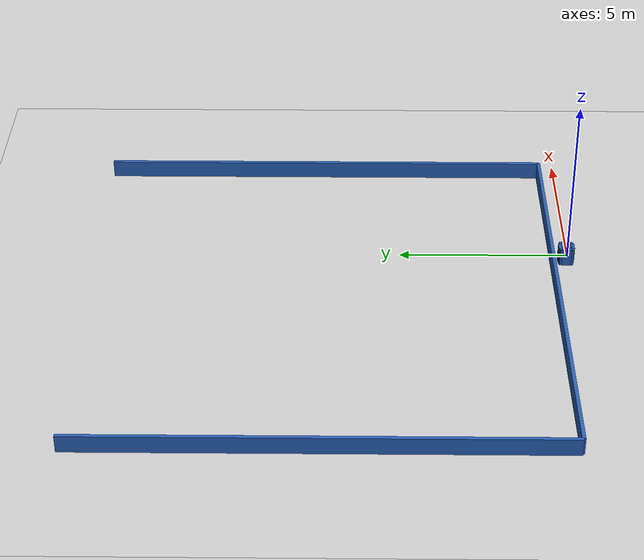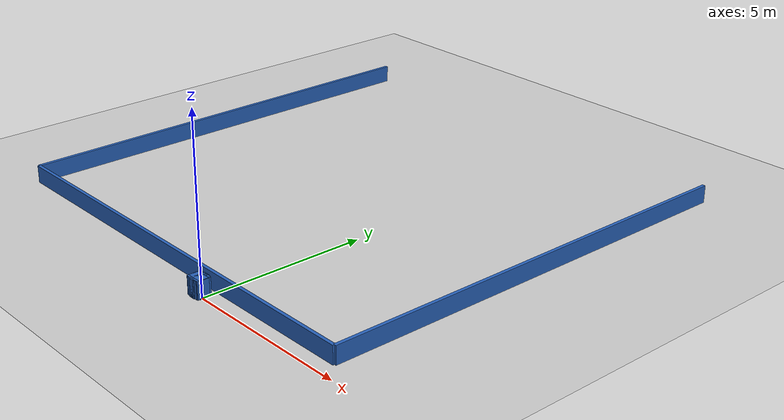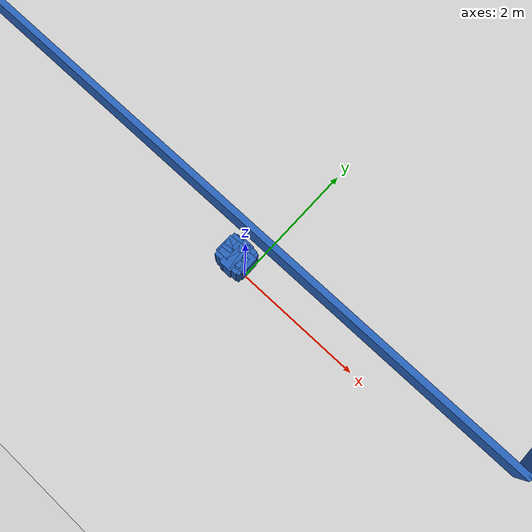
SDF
<?xml version="1.0" ?>
    <sdf version="1.5">
      <world name="default">
        <!-- A global light source -->
        <include>
          <uri>model://sun</uri>
        </include>
        <!-- A ground plane -->
        <include>
          <uri>model://ground_plane</uri>
        </include>

    <model name='libopen_space_final_T2B_99_64'>
      <static>1</static>
      <pose frame=''>-0.225000 0.075000 0.000000 0.000000 0.000000 0.000000</pose>
      <link name='link'>
        <inertial>
          <mass>1</mass>
          <inertia>
            <ixx>0.145833</ixx>
            <ixy>0</ixy>
            <ixz>0</ixz>
            <iyy>0.145833</iyy>
            <iyz>0</iyz>
            <izz>0.125</izz>
          </inertia>
        </inertial>
        <collision name='collision'>
          <geometry>
            <box>
              <size>0.49 0.28 1</size>
            </box>
          </geometry>
          <max_contacts>10</max_contacts>
          <surface>
            <contact>
              <ode/>
            </contact>
            <bounce/>
            <friction>
              <torsional>
                <ode/>
              </torsional>
              <ode/>
            </friction>
          </surface>
        </collision>
        <visual name='visual'>
          <geometry>
            <box>
              <size>0.49 0.28 1</size>
            </box>
          </geometry>
	    <material>
              <ambient>0.152000 0.379000 0.720000 1</ambient>
	      <diffuse>0.152000 0.379000 0.720000 1</diffuse>
          </material>
          <material>
            <script>
              <name>Gazebo/Grey</name>
              <uri>file://media/materials/scripts/gazebo.material</uri>
            </script>
          </material>
        </visual>
        <self_collide>0</self_collide>
        <kinematic>0</kinematic>
        <gravity>1</gravity>
      </link>
      <plugin name='libopen_space_final_T2B_99_64' filename='libopen_space_final_T2B_99_64.so'/>
    </model>

    <model name='libopen_space_final_T2B_96_0'>
      <static>1</static>
      <pose frame=''>-0.225000 0.075000 0.000000 0.000000 0.000000 0.000000</pose>
      <link name='link'>
        <inertial>
          <mass>1</mass>
          <inertia>
            <ixx>0.145833</ixx>
            <ixy>0</ixy>
            <ixz>0</ixz>
            <iyy>0.145833</iyy>
            <iyz>0</iyz>
            <izz>0.125</izz>
          </inertia>
        </inertial>
        <collision name='collision'>
          <geometry>
            <box>
              <size>0.45 0.40 1</size>
            </box>
          </geometry>
          <max_contacts>10</max_contacts>
          <surface>
            <contact>
              <ode/>
            </contact>
            <bounce/>
            <friction>
              <torsional>
                <ode/>
              </torsional>
              <ode/>
            </friction>
          </surface>
        </collision>
        <visual name='visual'>
          <geometry>
            <box>
              <size>0.45 0.40 1</size>
            </box>
          </geometry>
	    <material>
              <ambient>0.152000 0.379000 0.720000 1</ambient>
	      <diffuse>0.152000 0.379000 0.720000 1</diffuse>
          </material>
          <material>
            <script>
              <name>Gazebo/Grey</name>
              <uri>file://media/materials/scripts/gazebo.material</uri>
            </script>
          </material>
        </visual>
        <self_collide>0</self_collide>
        <kinematic>0</kinematic>
        <gravity>1</gravity>
      </link>
      <plugin name='libopen_space_final_T2B_96_0' filename='libopen_space_final_T2B_96_0.so'/>
    </model>

    <model name='libopen_space_final_T2B_80_26'>
      <static>1</static>
      <pose frame=''>-0.225000 0.075000 0.000000 0.000000 0.000000 0.000000</pose>
      <link name='link'>
        <inertial>
          <mass>1</mass>
          <inertia>
            <ixx>0.145833</ixx>
            <ixy>0</ixy>
            <ixz>0</ixz>
            <iyy>0.145833</iyy>
            <iyz>0</iyz>
            <izz>0.125</izz>
          </inertia>
        </inertial>
        <collision name='collision'>
          <geometry>
            <box>
              <size>0.16 0.40 1</size>
            </box>
          </geometry>
          <max_contacts>10</max_contacts>
          <surface>
            <contact>
              <ode/>
            </contact>
            <bounce/>
            <friction>
              <torsional>
                <ode/>
              </torsional>
              <ode/>
            </friction>
          </surface>
        </collision>
        <visual name='visual'>
          <geometry>
            <box>
              <size>0.16 0.40 1</size>
            </box>
          </geometry>
	    <material>
              <ambient>0.152000 0.379000 0.720000 1</ambient>
	      <diffuse>0.152000 0.379000 0.720000 1</diffuse>
          </material>
          <material>
            <script>
              <name>Gazebo/Grey</name>
              <uri>file://media/materials/scripts/gazebo.material</uri>
            </script>
          </material>
        </visual>
        <self_collide>0</self_collide>
        <kinematic>0</kinematic>
        <gravity>1</gravity>
      </link>
      <plugin name='libopen_space_final_T2B_80_26' filename='libopen_space_final_T2B_80_26.so'/>
    </model>

    <model name='libopen_space_final_T2B_123_20'>
      <static>1</static>
      <pose frame=''>-0.225000 0.075000 0.000000 0.000000 0.000000 0.000000</pose>
      <link name='link'>
        <inertial>
          <mass>1</mass>
          <inertia>
            <ixx>0.145833</ixx>
            <ixy>0</ixy>
            <ixz>0</ixz>
            <iyy>0.145833</iyy>
            <iyz>0</iyz>
            <izz>0.125</izz>
          </inertia>
        </inertial>
        <collision name='collision'>
          <geometry>
            <box>
              <size>0.43 0.28 1</size>
            </box>
          </geometry>
          <max_contacts>10</max_contacts>
          <surface>
            <contact>
              <ode/>
            </contact>
            <bounce/>
            <friction>
              <torsional>
                <ode/>
              </torsional>
              <ode/>
            </friction>
          </surface>
        </collision>
        <visual name='visual'>
          <geometry>
            <box>
              <size>0.43 0.28 1</size>
            </box>
          </geometry>
	    <material>
              <ambient>0.152000 0.379000 0.720000 1</ambient>
	      <diffuse>0.152000 0.379000 0.720000 1</diffuse>
          </material>
          <material>
            <script>
              <name>Gazebo/Grey</name>
              <uri>file://media/materials/scripts/gazebo.material</uri>
            </script>
          </material>
        </visual>
        <self_collide>0</self_collide>
        <kinematic>0</kinematic>
        <gravity>1</gravity>
      </link>
      <plugin name='libopen_space_final_T2B_123_20' filename='libopen_space_final_T2B_123_20.so'/>
    </model>

    <model name='libopen_space_final_T2B_122_30'>
      <static>1</static>
      <pose frame=''>-0.225000 0.075000 0.000000 0.000000 0.000000 0.000000</pose>
      <link name='link'>
        <inertial>
          <mass>1</mass>
          <inertia>
            <ixx>0.145833</ixx>
            <ixy>0</ixy>
            <ixz>0</ixz>
            <iyy>0.145833</iyy>
            <iyz>0</iyz>
            <izz>0.125</izz>
          </inertia>
        </inertial>
        <collision name='collision'>
          <geometry>
            <box>
              <size>0.33 0.30 1</size>
            </box>
          </geometry>
          <max_contacts>10</max_contacts>
          <surface>
            <contact>
              <ode/>
            </contact>
            <bounce/>
            <friction>
              <torsional>
                <ode/>
              </torsional>
              <ode/>
            </friction>
          </surface>
        </collision>
        <visual name='visual'>
          <geometry>
            <box>
              <size>0.33 0.30 1</size>
            </box>
          </geometry>
	    <material>
              <ambient>0.152000 0.379000 0.720000 1</ambient>
	      <diffuse>0.152000 0.379000 0.720000 1</diffuse>
          </material>
          <material>
            <script>
              <name>Gazebo/Grey</name>
              <uri>file://media/materials/scripts/gazebo.material</uri>
            </script>
          </material>
        </visual>
        <self_collide>0</self_collide>
        <kinematic>0</kinematic>
        <gravity>1</gravity>
      </link>
      <plugin name='libopen_space_final_T2B_122_30' filename='libopen_space_final_T2B_122_30.so'/>
    </model>

    <model name='libopen_space_final_T2B_115_72'>
      <static>1</static>
      <pose frame=''>-0.225000 0.075000 0.000000 0.000000 0.000000 0.000000</pose>
      <link name='link'>
        <inertial>
          <mass>1</mass>
          <inertia>
            <ixx>0.145833</ixx>
            <ixy>0</ixy>
            <ixz>0</ixz>
            <iyy>0.145833</iyy>
            <iyz>0</iyz>
            <izz>0.125</izz>
          </inertia>
        </inertial>
        <collision name='collision'>
          <geometry>
            <box>
              <size>0.37 0.43 1</size>
            </box>
          </geometry>
          <max_contacts>10</max_contacts>
          <surface>
            <contact>
              <ode/>
            </contact>
            <bounce/>
            <friction>
              <torsional>
                <ode/>
              </torsional>
              <ode/>
            </friction>
          </surface>
        </collision>
        <visual name='visual'>
          <geometry>
            <box>
              <size>0.37 0.43 1</size>
            </box>
          </geometry>
	    <material>
              <ambient>0.152000 0.379000 0.720000 1</ambient>
	      <diffuse>0.152000 0.379000 0.720000 1</diffuse>
          </material>
          <material>
            <script>
              <name>Gazebo/Grey</name>
              <uri>file://media/materials/scripts/gazebo.material</uri>
            </script>
          </material>
        </visual>
        <self_collide>0</self_collide>
        <kinematic>0</kinematic>
        <gravity>1</gravity>
      </link>
      <plugin name='libopen_space_final_T2B_115_72' filename='libopen_space_final_T2B_115_72.so'/>
    </model>

    <model name='libopen_space_final_T2B_145_37'>
      <static>1</static>
      <pose frame=''>-0.225000 0.075000 0.000000 0.000000 0.000000 0.000000</pose>
      <link name='link'>
        <inertial>
          <mass>1</mass>
          <inertia>
            <ixx>0.145833</ixx>
            <ixy>0</ixy>
            <ixz>0</ixz>
            <iyy>0.145833</iyy>
            <iyz>0</iyz>
            <izz>0.125</izz>
          </inertia>
        </inertial>
        <collision name='collision'>
          <geometry>
            <box>
              <size>0.18 0.20 1</size>
            </box>
          </geometry>
          <max_contacts>10</max_contacts>
          <surface>
            <contact>
              <ode/>
            </contact>
            <bounce/>
            <friction>
              <torsional>
                <ode/>
              </torsional>
              <ode/>
            </friction>
          </surface>
        </collision>
        <visual name='visual'>
          <geometry>
            <box>
              <size>0.18 0.20 1</size>
            </box>
          </geometry>
	    <material>
              <ambient>0.152000 0.379000 0.720000 1</ambient>
	      <diffuse>0.152000 0.379000 0.720000 1</diffuse>
          </material>
          <material>
            <script>
              <name>Gazebo/Grey</name>
              <uri>file://media/materials/scripts/gazebo.material</uri>
            </script>
          </material>
        </visual>
        <self_collide>0</self_collide>
        <kinematic>0</kinematic>
        <gravity>1</gravity>
      </link>
      <plugin name='libopen_space_final_T2B_145_37' filename='libopen_space_final_T2B_145_37.so'/>
    </model>

    <model name='libopen_space_final_T2B_139_84'>
      <static>1</static>
      <pose frame=''>-0.225000 0.075000 0.000000 0.000000 0.000000 0.000000</pose>
      <link name='link'>
        <inertial>
          <mass>1</mass>
          <inertia>
            <ixx>0.145833</ixx>
            <ixy>0</ixy>
            <ixz>0</ixz>
            <iyy>0.145833</iyy>
            <iyz>0</iyz>
            <izz>0.125</izz>
          </inertia>
        </inertial>
        <collision name='collision'>
          <geometry>
            <box>
              <size>0.21 0.31 1</size>
            </box>
          </geometry>
          <max_contacts>10</max_contacts>
          <surface>
            <contact>
              <ode/>
            </contact>
            <bounce/>
            <friction>
              <torsional>
                <ode/>
              </torsional>
              <ode/>
            </friction>
          </surface>
        </collision>
        <visual name='visual'>
          <geometry>
            <box>
              <size>0.21 0.31 1</size>
            </box>
          </geometry>
	    <material>
              <ambient>0.152000 0.379000 0.720000 1</ambient>
	      <diffuse>0.152000 0.379000 0.720000 1</diffuse>
          </material>
          <material>
            <script>
              <name>Gazebo/Grey</name>
              <uri>file://media/materials/scripts/gazebo.material</uri>
            </script>
          </material>
        </visual>
        <self_collide>0</self_collide>
        <kinematic>0</kinematic>
        <gravity>1</gravity>
      </link>
      <plugin name='libopen_space_final_T2B_139_84' filename='libopen_space_final_T2B_139_84.so'/>
    </model>

    <model name='libopen_space_final_T2B_111_18'>
      <static>1</static>
      <pose frame=''>-0.225000 0.075000 0.000000 0.000000 0.000000 0.000000</pose>
      <link name='link'>
        <inertial>
          <mass>1</mass>
          <inertia>
            <ixx>0.145833</ixx>
            <ixy>0</ixy>
            <ixz>0</ixz>
            <iyy>0.145833</iyy>
            <iyz>0</iyz>
            <izz>0.125</izz>
          </inertia>
        </inertial>
        <collision name='collision'>
          <geometry>
            <box>
              <size>0.32 0.25 1</size>
            </box>
          </geometry>
          <max_contacts>10</max_contacts>
          <surface>
            <contact>
              <ode/>
            </contact>
            <bounce/>
            <friction>
              <torsional>
                <ode/>
              </torsional>
              <ode/>
            </friction>
          </surface>
        </collision>
        <visual name='visual'>
          <geometry>
            <box>
              <size>0.32 0.25 1</size>
            </box>
          </geometry>
	    <material>
              <ambient>0.152000 0.379000 0.720000 1</ambient>
	      <diffuse>0.152000 0.379000 0.720000 1</diffuse>
          </material>
          <material>
            <script>
              <name>Gazebo/Grey</name>
              <uri>file://media/materials/scripts/gazebo.material</uri>
            </script>
          </material>
        </visual>
        <self_collide>0</self_collide>
        <kinematic>0</kinematic>
        <gravity>1</gravity>
      </link>
      <plugin name='libopen_space_final_T2B_111_18' filename='libopen_space_final_T2B_111_18.so'/>
    </model>

    <model name='libopen_space_final_T2B_126_41'>
      <static>1</static>
      <pose frame=''>-0.225000 0.075000 0.000000 0.000000 0.000000 0.000000</pose>
      <link name='link'>
        <inertial>
          <mass>1</mass>
          <inertia>
            <ixx>0.145833</ixx>
            <ixy>0</ixy>
            <ixz>0</ixz>
            <iyy>0.145833</iyy>
            <iyz>0</iyz>
            <izz>0.125</izz>
          </inertia>
        </inertial>
        <collision name='collision'>
          <geometry>
            <box>
              <size>0.46 0.11 1</size>
            </box>
          </geometry>
          <max_contacts>10</max_contacts>
          <surface>
            <contact>
              <ode/>
            </contact>
            <bounce/>
            <friction>
              <torsional>
                <ode/>
              </torsional>
              <ode/>
            </friction>
          </surface>
        </collision>
        <visual name='visual'>
          <geometry>
            <box>
              <size>0.46 0.11 1</size>
            </box>
          </geometry>
	    <material>
              <ambient>0.152000 0.379000 0.720000 1</ambient>
	      <diffuse>0.152000 0.379000 0.720000 1</diffuse>
          </material>
          <material>
            <script>
              <name>Gazebo/Grey</name>
              <uri>file://media/materials/scripts/gazebo.material</uri>
            </script>
          </material>
        </visual>
        <self_collide>0</self_collide>
        <kinematic>0</kinematic>
        <gravity>1</gravity>
      </link>
      <plugin name='libopen_space_final_T2B_126_41' filename='libopen_space_final_T2B_126_41.so'/>
    </model>

    <model name='libopen_space_final_T2B_55_44'>
      <static>1</static>
      <pose frame=''>-0.225000 0.075000 0.000000 0.000000 0.000000 0.000000</pose>
      <link name='link'>
        <inertial>
          <mass>1</mass>
          <inertia>
            <ixx>0.145833</ixx>
            <ixy>0</ixy>
            <ixz>0</ixz>
            <iyy>0.145833</iyy>
            <iyz>0</iyz>
            <izz>0.125</izz>
          </inertia>
        </inertial>
        <collision name='collision'>
          <geometry>
            <box>
              <size>0.13 0.27 1</size>
            </box>
          </geometry>
          <max_contacts>10</max_contacts>
          <surface>
            <contact>
              <ode/>
            </contact>
            <bounce/>
            <friction>
              <torsional>
                <ode/>
              </torsional>
              <ode/>
            </friction>
          </surface>
        </collision>
        <visual name='visual'>
          <geometry>
            <box>
              <size>0.13 0.27 1</size>
            </box>
          </geometry>
	    <material>
              <ambient>0.152000 0.379000 0.720000 1</ambient>
	      <diffuse>0.152000 0.379000 0.720000 1</diffuse>
          </material>
          <material>
            <script>
              <name>Gazebo/Grey</name>
              <uri>file://media/materials/scripts/gazebo.material</uri>
            </script>
          </material>
        </visual>
        <self_collide>0</self_collide>
        <kinematic>0</kinematic>
        <gravity>1</gravity>
      </link>
      <plugin name='libopen_space_final_T2B_55_44' filename='libopen_space_final_T2B_55_44.so'/>
    </model>

    <model name='libopen_space_final_T2B_120_45'>
      <static>1</static>
      <pose frame=''>-0.225000 0.075000 0.000000 0.000000 0.000000 0.000000</pose>
      <link name='link'>
        <inertial>
          <mass>1</mass>
          <inertia>
            <ixx>0.145833</ixx>
            <ixy>0</ixy>
            <ixz>0</ixz>
            <iyy>0.145833</iyy>
            <iyz>0</iyz>
            <izz>0.125</izz>
          </inertia>
        </inertial>
        <collision name='collision'>
          <geometry>
            <box>
              <size>0.11 0.47 1</size>
            </box>
          </geometry>
          <max_contacts>10</max_contacts>
          <surface>
            <contact>
              <ode/>
            </contact>
            <bounce/>
            <friction>
              <torsional>
                <ode/>
              </torsional>
              <ode/>
            </friction>
          </surface>
        </collision>
        <visual name='visual'>
          <geometry>
            <box>
              <size>0.11 0.47 1</size>
            </box>
          </geometry>
	    <material>
              <ambient>0.152000 0.379000 0.720000 1</ambient>
	      <diffuse>0.152000 0.379000 0.720000 1</diffuse>
          </material>
          <material>
            <script>
              <name>Gazebo/Grey</name>
              <uri>file://media/materials/scripts/gazebo.material</uri>
            </script>
          </material>
        </visual>
        <self_collide>0</self_collide>
        <kinematic>0</kinematic>
        <gravity>1</gravity>
      </link>
      <plugin name='libopen_space_final_T2B_120_45' filename='libopen_space_final_T2B_120_45.so'/>
    </model>

    <model name='libopen_space_final_T2B_52_49'>
      <static>1</static>
      <pose frame=''>-0.225000 0.075000 0.000000 0.000000 0.000000 0.000000</pose>
      <link name='link'>
        <inertial>
          <mass>1</mass>
          <inertia>
            <ixx>0.145833</ixx>
            <ixy>0</ixy>
            <ixz>0</ixz>
            <iyy>0.145833</iyy>
            <iyz>0</iyz>
            <izz>0.125</izz>
          </inertia>
        </inertial>
        <collision name='collision'>
          <geometry>
            <box>
              <size>0.20 0.47 1</size>
            </box>
          </geometry>
          <max_contacts>10</max_contacts>
          <surface>
            <contact>
              <ode/>
            </contact>
            <bounce/>
            <friction>
              <torsional>
                <ode/>
              </torsional>
              <ode/>
            </friction>
          </surface>
        </collision>
        <visual name='visual'>
          <geometry>
            <box>
              <size>0.20 0.47 1</size>
            </box>
          </geometry>
	    <material>
              <ambient>0.152000 0.379000 0.720000 1</ambient>
	      <diffuse>0.152000 0.379000 0.720000 1</diffuse>
          </material>
          <material>
            <script>
              <name>Gazebo/Grey</name>
              <uri>file://media/materials/scripts/gazebo.material</uri>
            </script>
          </material>
        </visual>
        <self_collide>0</self_collide>
        <kinematic>0</kinematic>
        <gravity>1</gravity>
      </link>
      <plugin name='libopen_space_final_T2B_52_49' filename='libopen_space_final_T2B_52_49.so'/>
    </model>

        <model name='bottom_wall'>
          <static>1</static>
          <pose frame=''>-2.25 0.5 0.000000 0.000000 0.000000 1.57079632</pose>
          <link name='link'>
            <inertial>
            <mass>1</mass>
            <inertia>
              <ixx>0.145833</ixx>
              <ixy>0</ixy>
              <ixz>0</ixz>
              <iyy>0.145833</iyy>
              <iyz>0</iyz>
              <izz>0.125</izz>
            </inertia>
            </inertial>
            <collision name='collision'>
            <geometry>
              <box>
              <size>0.1 13.5 1</size>
              </box>
            </geometry>
            <max_contacts>10</max_contacts>
            <surface>
              <contact>
              <ode/>
              </contact>
              <bounce/>
              <friction>
              <torsional>
                <ode/>
              </torsional>
              <ode/>
              </friction>
            </surface>
            </collision>
            <visual name='visual'>
            <geometry>
              <box>
              <size>0.1 13.5 1</size>
              </box>
            </geometry>
            <material>
              <ambient>0.152000 0.379000 0.720000 1</ambient>
            <diffuse>0.152000 0.379000 0.720000 1</diffuse>
            </material>
            <material>
              <script>
              <name>Gazebo/Grey</name>
              <uri>file://media/materials/scripts/gazebo.material</uri>
              </script>
            </material>
            </visual>
            <self_collide>0</self_collide>
            <kinematic>0</kinematic>
            <gravity>1</gravity>
          </link>
        </model>

        <model name='left_wall'>
          <static>1</static>
          <pose frame=''>-9 7.25 0.000000 0.000000 0.000000 0.000000</pose>
          <link name='link'>
            <inertial>
            <mass>1</mass>
            <inertia>
              <ixx>0.145833</ixx>
              <ixy>0</ixy>
              <ixz>0</ixz>
              <iyy>0.145833</iyy>
              <iyz>0</iyz>
              <izz>0.125</izz>
            </inertia>
            </inertial>
            <collision name='collision'>
            <geometry>
              <box>
              <size>0.1 13.5 1</size>
              </box>
            </geometry>
            <max_contacts>10</max_contacts>
            <surface>
              <contact>
              <ode/>
              </contact>
              <bounce/>
              <friction>
              <torsional>
                <ode/>
              </torsional>
              <ode/>
              </friction>
            </surface>
            </collision>
            <visual name='visual'>
            <geometry>
              <box>
              <size>0.1 13.5 1</size>
              </box>
            </geometry>
            <material>
              <ambient>0.152000 0.379000 0.720000 1</ambient>
            <diffuse>0.152000 0.379000 0.720000 1</diffuse>
            </material>
            <material>
              <script>
              <name>Gazebo/Grey</name>
              <uri>file://media/materials/scripts/gazebo.material</uri>
              </script>
            </material>
            </visual>
            <self_collide>0</self_collide>
            <kinematic>0</kinematic>
            <gravity>1</gravity>
          </link>
        </model>

        <model name='right_wall'>
          <static>1</static>
          <pose frame=''>4.5 7.25 0.000000 0.000000 0.000000 0.000000</pose>
          <link name='link'>
            <inertial>
            <mass>1</mass>
            <inertia>
              <ixx>0.145833</ixx>
              <ixy>0</ixy>
              <ixz>0</ixz>
              <iyy>0.145833</iyy>
              <iyz>0</iyz>
              <izz>0.125</izz>
            </inertia>
            </inertial>
            <collision name='collision'>
            <geometry>
              <box>
              <size>0.1 13.5 1</size>
              </box>
            </geometry>
            <max_contacts>10</max_contacts>
            <surface>
              <contact>
              <ode/>
              </contact>
              <bounce/>
              <friction>
              <torsional>
                <ode/>
              </torsional>
              <ode/>
              </friction>
            </surface>
            </collision>
            <visual name='visual'>
            <geometry>
              <box>
              <size>0.1 13.5 1</size>
              </box>
            </geometry>
            <material>
              <ambient>0.152000 0.379000 0.720000 1</ambient>
            <diffuse>0.152000 0.379000 0.720000 1</diffuse>
            </material>
            <material>
              <script>
              <name>Gazebo/Grey</name>
              <uri>file://media/materials/scripts/gazebo.material</uri>
              </script>
            </material>
            </visual>
            <self_collide>0</self_collide>
            <kinematic>0</kinematic>
            <gravity>1</gravity>
          </link>
        </model>

      </world>
    </sdf>"
